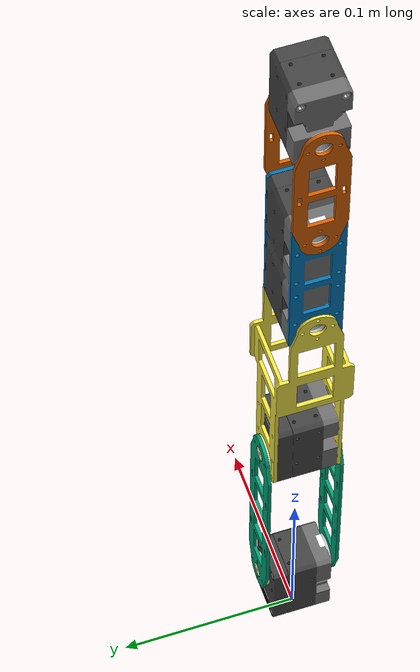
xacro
<?xml version="1.0"?>

<robot name="wp_manipulator" xmlns:xacro="http://ros.org/wiki/xacro">

  <xacro:include filename="$(find aerial_manipulators)/urdf/manipulator_base.urdf.xacro" />

  <xacro:wp_manipulator
    parent="world">
    <origin xyz="0 0 0" rpy="0 0 0"/>
  </xacro:wp_manipulator>

  <xacro:transmisija
    trans_number="1"
    joint_name="link0_to_link1">
  </xacro:transmisija>

  <xacro:transmisija
    trans_number="2"
    joint_name="link1_to_link2">
  </xacro:transmisija>

  <xacro:transmisija
    trans_number="3"
    joint_name="link2_to_link3">
  </xacro:transmisija>

  <xacro:transmisija
    trans_number="4"
    joint_name="link3_to_link4">
  </xacro:transmisija>

  <xacro:transmisija
    trans_number="5"
    joint_name="link4_to_link5">
  </xacro:transmisija>

</robot>

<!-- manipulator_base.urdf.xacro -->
<robot xmlns:xacro="http://ros.org/wiki/xacro">

  <xacro:macro name="wp_manipulator"
  params="parent *origin">

    <xacro:property name="a0" value="0.04526"/>
    <xacro:property name="a1" value="0.122490"/>
    <xacro:property name="a2" value="0.1365"/>
    <xacro:property name="a3" value="0.075511"/>
    <xacro:property name="a4" value="0.072489"/>
    <xacro:property name="d5" value="0.04526"/>
    <xacro:property name="theta1" value="${pi/2}"/>
    <xacro:property name="alpha2" value="${-pi/2}"/>

    <xacro:property name="mass2" value="0.03"/>
    <xacro:property name="mass1" value="${mass2*a1/a2}"/>
    <xacro:property name="mass3" value="${mass2*a3/a2}"/>
    <xacro:property name="mass4" value="${mass2*a4/a2}"/>
    <xacro:property name="mass5" value="${mass2*d5/a2}"/>

    <xacro:property name="rad" value="0.03"/>

    <link name="world"></link>

    <link name='link0'>
      <inertial>
        <mass value="${mass5}" />
        <origin xyz="0 ${a0/2} 0" rpy="0 0 0"/>
        <inertia
          ixx="${1/12 * mass5 * (3*rad*rad + a0*a0)}" ixy="0" ixz="0"
          iyx="0" iyy="${1/2 * mass5 * rad * rad}" iyz="0"
          izx="0" izy="0" izz="${1/12 * mass5 * (3*rad*rad + a0*a0)}"/>
      </inertial>

      <visual>
        <origin xyz="0 0 0" rpy="${pi / 2} 0 ${pi}" />
        <geometry>
          <mesh filename="package://aerial_manipulators/meshes/wp_manipulator/base.dae"
            scale="1 1 1" />
        </geometry>
      </visual>
    </link>

    <link name='link1'>
      <inertial>
        <mass value="${mass1}" />
        <origin xyz="0 ${a1/2} 0" rpy="0 0 0"/>
        <inertia
          ixx="${1/12 * mass1 * (3*rad*rad + a1*a1)}" ixy="0" ixz="0"
          iyx="0" iyy="${1/2 * mass1 * rad * rad}" iyz="0"
          izx="0" izy="0" izz="${1/12 * mass1 * (3*rad*rad + a1*a1)}"/>
      </inertial>

      <visual>
        <origin xyz="0 0 0" rpy="0 0 0" />
        <geometry>
          <mesh filename="package://aerial_manipulators/meshes/wp_manipulator/link1.dae"
            scale="1 1 1" />
        </geometry>
      </visual>
    </link>

    <link name='link2'>
      <inertial>
        <mass value="${mass2}" />
        <origin xyz="${a2/2} 0 0" rpy="0 0 0"/>
        <inertia
          ixx="${1/2 * mass2 * rad * rad}" ixy="0" ixz="0"
          iyx="0" iyy="${1/12 * mass2 * (3*rad*rad + a2*a2)}" iyz="0"
          izx="0" izy="0" izz="${1/12 * mass2 * (3*rad*rad + a2*a2)}"/>
      </inertial>

      <visual>
        <origin xyz="0 0 0" rpy="0 0 -${pi / 2}" />
        <geometry>
          <mesh filename="package://aerial_manipulators/meshes/wp_manipulator/link2.dae"
            scale="1 1 1" />
        </geometry>
      </visual>
    </link>

    <link name='link3'>
      <inertial>
        <mass value="${mass3}" />
        <origin xyz="${a3/2} 0 0" rpy="0 0 0"/>
        <inertia
          ixx="${1/2 * mass3 * rad * rad}" ixy="0" ixz="0"
          iyx="0" iyy="${1/12 * mass3 * (3*rad*rad + a3*a3)}" iyz="0"
          izx="0" izy="0" izz="${1/12 * mass3 * (3*rad*rad + a3*a3)}"/>
      </inertial>

      <visual>
        <origin xyz="0 0 0" rpy="0 ${pi / 2} ${-pi / 2}" />
        <geometry>
          <mesh filename="package://aerial_manipulators/meshes/wp_manipulator/link3.dae"
            scale="1 1 1" />
        </geometry>
      </visual>
    </link>

    <link name='link4'>
      <inertial>
        <mass value="${mass4}" />
        <origin xyz="${a4/2} 0 0" rpy="0 0 0"/>
        <inertia
          ixx="${1/2 * mass4 * rad * rad}" ixy="0" ixz="0"
          iyx="0" iyy="${1/12 * mass4 * (3*rad*rad + a4*a4)}" iyz="0"
          izx="0" izy="0" izz="${1/12 * mass4 * (3*rad*rad + a4*a4)}"/>
      </inertial>

      <visual>
        <origin xyz="0 0 0" rpy="0 ${pi / 2} -${pi / 2}" />
        <geometry>
          <mesh filename="package://aerial_manipulators/meshes/wp_manipulator/link4.dae"
            scale="1 1 1" />
        </geometry>
      </visual>
    </link>

    <link name='link5'>
      <inertial>
        <mass value="${mass5}" />
        <origin xyz="${d5/2} 0 0" rpy="0 0 0"/>
        <inertia
          ixx="${1/2 * mass5 * rad * rad}" ixy="0" ixz="0"
          iyx="0" iyy="${1/12 * mass5 * (3*rad*rad + d5*d5)}" iyz="0"
          izx="0" izy="0" izz="${1/12 * mass5 * (3*rad*rad + d5*d5)}"/>
      </inertial>

      <visual>
        <origin xyz="0 0 0" rpy="0 ${pi / 2} 0" />
        <geometry>
          <mesh filename="package://aerial_manipulators/meshes/wp_manipulator/link5.dae"
            scale="1 1 1" />
        </geometry>
      </visual>
    </link>

    <joint name="world_to_link0" type="fixed">
      <parent link="world"/>
      <child link="link0"/>
      <!-- Adjust Gazebo coordinate system to link1 coordinate system -->
      <origin xyz="0 0 ${a0}" rpy="0 0 0"/>
    </joint>

    <joint name="link0_to_link1" type="fixed">
      <parent link="link0"/>
      <child link="link1"/>
      <!-- Adjust Gazebo coordinate system to link1 coordinate system -->
      <origin xyz="0 0 0" rpy="${pi/2} 0 ${pi}"/>
      <limit upper="1.57" lower="-1.57" effort="10000000" velocity="20"/>
      <axis xyz="0 0 1" />
    </joint>

    <joint name="link1_to_link2" type="fixed">
      <parent link="link1"/>
      <child link="link2"/>
      <origin xyz="0 ${a1} 0" rpy="0 0 ${theta1}"/>
      <limit upper="2.2" lower="-2.2" effort="10000000" velocity="20"/>
      <axis xyz="0 0 1" />
    </joint>

    <joint name="link2_to_link3" type="fixed">
      <parent link="link2"/>
      <child link="link3"/>
      <origin xyz="${a2} 0 0" rpy="${alpha2} 0 0"/>
      <limit upper="1.57" lower="-1.57" effort="10000000" velocity="20"/>
      <axis xyz="0 0 1" />
    </joint>

    <joint name="link3_to_link4" type="fixed">
      <parent link="link3"/>
      <child link="link4"/>
      <origin xyz="${a3} 0 0" rpy="0 0 0"/>
      <limit upper="1.57" lower="-1.57" effort="10000000" velocity="20"/>
      <axis xyz="0 0 1" />
    </joint>

    <joint name="link4_to_link5" type="fixed">
      <parent link="link4"/>
      <child link="link5"/>
      <origin xyz="${a4} 0 0" rpy="0 0 0"/>
      <limit upper="2.3" lower="-2.3" effort="10000000" velocity="20"/>
      <axis xyz="0 0 1" />
    </joint>

  </xacro:macro>

  <xacro:macro name="transmisija" params="trans_number joint_name">
    <transmission name="transmission_${trans_number}">
      <type>transmission_interface/SimpleTransmission</type>
      <joint name="${joint_name}">
        <hardwareInterface>hardware_interface/EffortJointInterface</hardwareInterface>
      </joint>
      <actuator name="motor_${trans_number}">
        <hardwareInterface>hardware_interface/EffortActuatorInterface</hardwareInterface>
        <mechanicalReduction>1</mechanicalReduction>
      </actuator>
    </transmission>
  </xacro:macro>

</robot>
